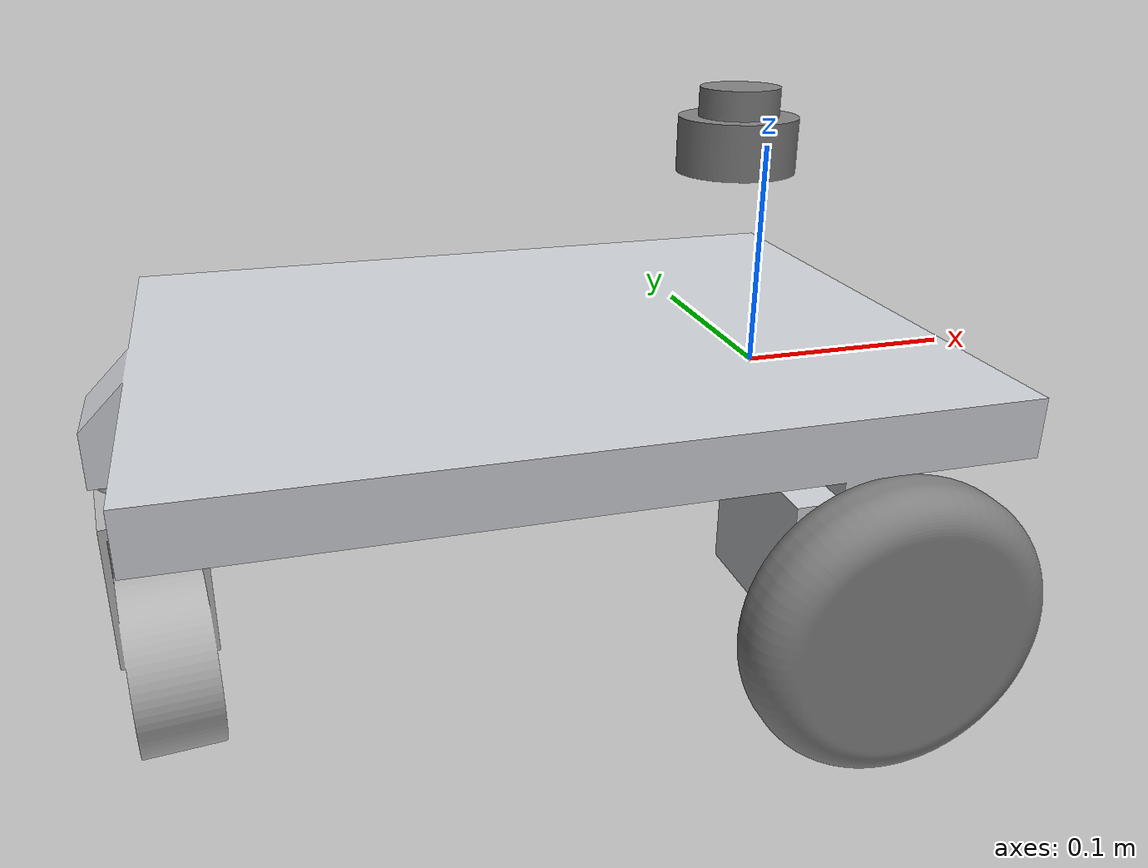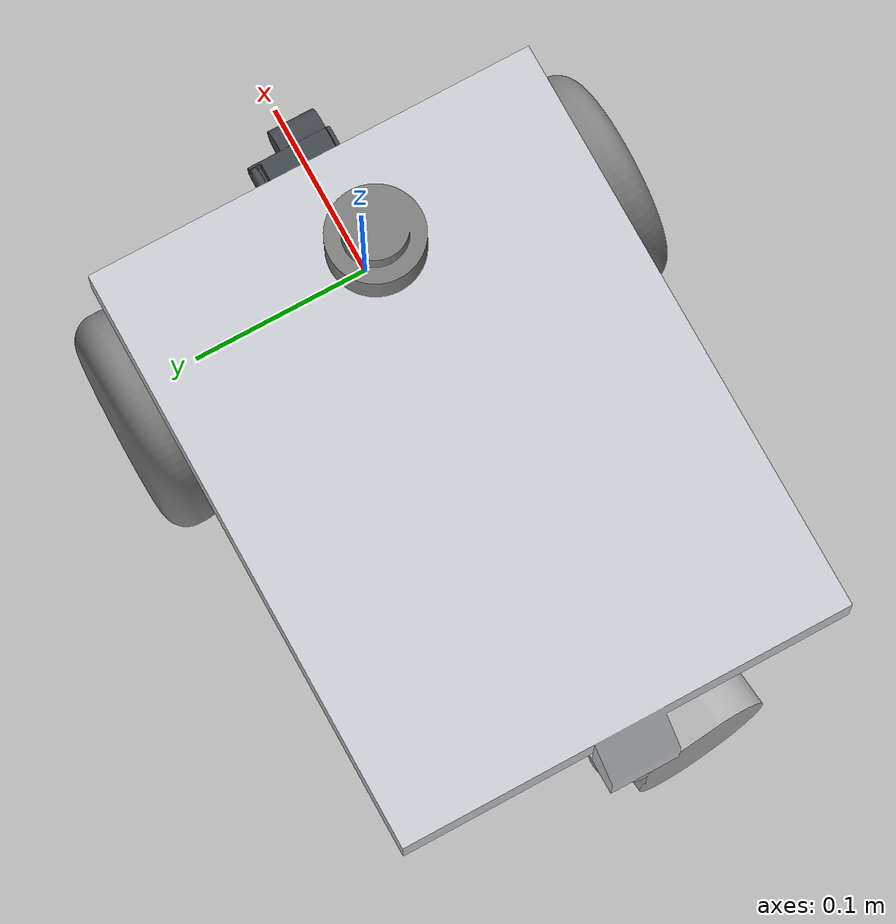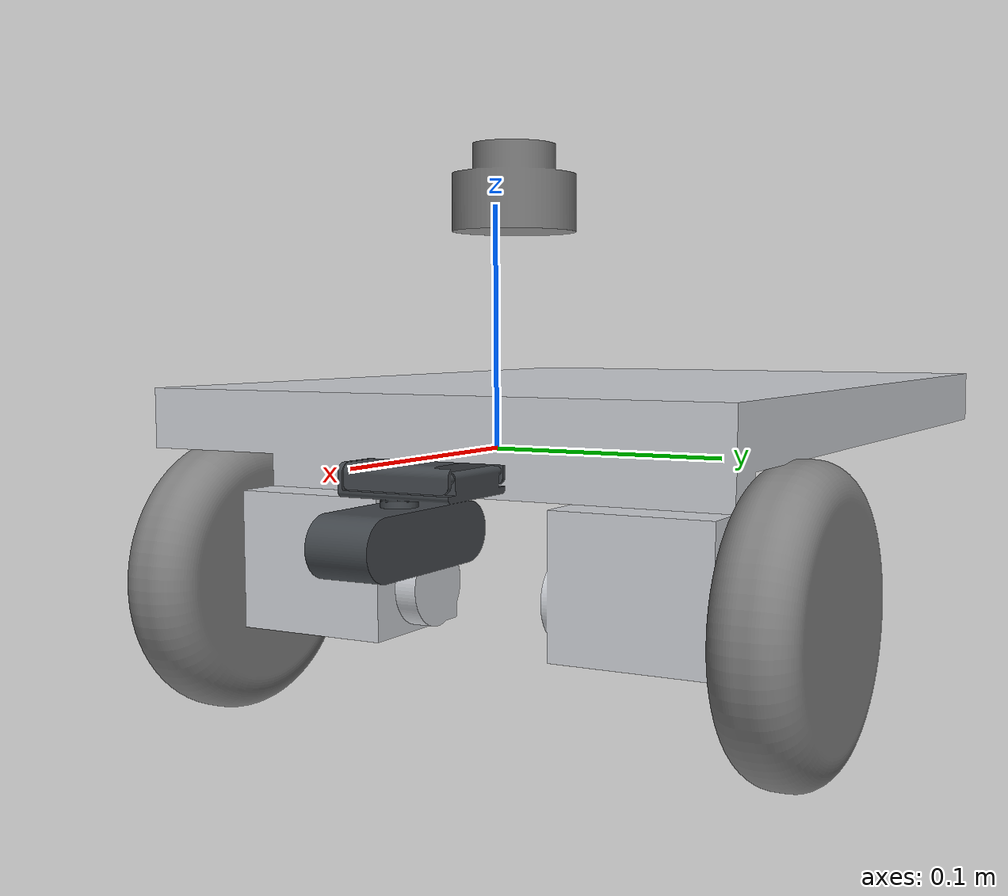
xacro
<?xml version="1.0"?>
<robot xmlns:xacro="http://www.ros.org/wiki/xacro" name="diffdrive_robot">

  <xacro:arg name="prefix" default="" />

  <xacro:include filename="$(find cps_loki_description)/urdf/diffbot_description.urdf.xacro" />

  <xacro:include filename="$(find cps_loki_description)/urdf/diffbot.materials.xacro" />

  <xacro:include filename="$(find cps_loki_description)/urdf/odrive.ros2_control.xacro" />

  <xacro:diffbot prefix="$(arg prefix)" />

  <xacro:odrive_ros2_control
    name="ODriveDiffBot"
    joint0_name="$(arg prefix)left_wheel_joint"
    joint1_name="$(arg prefix)right_wheel_joint" />

</robot>

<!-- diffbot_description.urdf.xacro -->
<robot xmlns:xacro="http://www.ros.org/wiki/xacro">

  <xacro:macro name="diffbot" params="prefix">

    <!-- Constants for robot dimensions -->
    <xacro:property name="PI" value="3.1415926535897931"/>
    <xacro:property name="base_mass" value="0.3" />
    <!-- arbitrary value for base mass -->
    <xacro:property name="base_width" value="0.26" />
    <!-- Updated wheel spacing to 25cm -->
    <xacro:property name="base_length" value="0.34" />
    <xacro:property name="base_height" value="0.123" />
    <xacro:property name="wheel_mass" value="0.3" />
    <!-- arbitrary value for wheel mass -->
    <xacro:property name="wheel_len" value="0.020" />
    <xacro:property name="wheel_radius" value="0.0625" />
    <xacro:property name="caster_wheel_mass" value="0.1" />
    <!-- arbitrary value for caster wheel mass -->
    <xacro:property name="caster_wheel_radius" value="0.04" />
    <xacro:property name="z_offset" value="-${base_height/2}" />
    <!-- Offset of main Axis to center of base body (Axis of rotation for steering) -->
    <xacro:property name="base_offset" value="0.11" />

    <!-- needed for replacement to find mesh dir: package://cps_loki_description/mesh/ -->

    <!-- Base Link -->
    <link name="${prefix}base_link">
      <visual>
        <origin xyz="0 0 0" rpy="0 0 0" />
        <geometry>
          <mesh filename="package://cps_loki_description/mesh/base_link_visual.stl"/>
        </geometry>
        <material name="base_link_material">
          <color rgba="0.80032179626883115375 0.81301836741632160788 0.83346199892499306383 1.0"/>
        </material>
      </visual>
      <collision>
        <origin xyz="0 0 0" rpy="0 -0 0" />
        <geometry>
          <mesh filename="package://cps_loki_description/mesh/base_link_collision.stl"/>
        </geometry>
      </collision>
      <inertial>
        <origin xyz="0 0 0" rpy="0 0 0"/>
        <mass value="8.4123950268139715547" />
        <inertia ixx="0.090166990291185383777" ixy="4.7429179749238352248e-18" ixz="1.4209310488728267579e-18" iyy="0.055481261106946747064" iyz="-0.01112159061226025876" izz="0.13051099377067149065" />
      </inertial>
    </link>

    <!-- Adding base_footprint for mapping (Needed by slam toolbox) -->
    <link name="${prefix}base_footprint">
    </link>

    <joint name="${prefix}base_footprint_joint" type="fixed">
      <parent link="${prefix}base_link" />
      <child link="${prefix}base_footprint" />
      <origin xyz="0 0 ${z_offset}" rpy="0 0 0" />
    </joint>

    <!-- right wheel joint -->
    <!-- fixed wheel joint for testing, type was continuous -->
    <joint name="${prefix}right_wheel_joint" type="continuous">
      <origin xyz="0 ${-0.125 - wheel_len /2} ${z_offset}" rpy="${PI / 2} 0 0" />
      <parent link="${prefix}base_link" />
      <child link="${prefix}right_wheel" />
      <axis xyz="0 0 -1"/>
      <limit effort="1" velocity="20" />
      <joint_properties friction="0.0"/>
    </joint>

    <!-- right wheel Link -->
    <link name="${prefix}right_wheel">
      <visual>
        <origin xyz="0 0 ${wheel_len}" rpy="0 -0 0" />
        <geometry>
          <mesh filename="package://cps_loki_description/mesh/wheel_link_visual.stl"/>
        </geometry>
        <material name="wheel_link_material">
          <color rgba="0.50196078431372548323 0.50196078431372548323 0.50196078431372548323 1.0"/>
        </material>
      </visual>
      <collision>
        <origin xyz="0 0 ${wheel_len}" rpy="0 -0 0" />
        <geometry>
          <mesh filename="package://cps_loki_description/mesh/wheel_link_collision.stl"/>
        </geometry>
      </collision>
      <inertial>
        <origin xyz="-1.3877787807814456755e-17 -6.9388939039072283776e-18 -0.017500000000000029421" rpy="0 0 0"/>
        <mass value="0.43298678305638949038" />
        <inertia ixx="0.00043196650576949035269" ixy="0" ixz="1.8666117243005040269e-36" iyy="0.00043196650576949029848" iyz="0" izz="0.00078373880522818965139" />
      </inertial>
    </link>

    <!-- fixed wheel joint for testing, type was continuous -->
    <!-- left wheel joint -->
    <joint name="${prefix}left_wheel_joint" type="continuous">
      <origin xyz="0 ${0.125 + wheel_len /2} ${z_offset}" rpy="${PI / 2} 0 0" />
      <parent link="${prefix}base_link" />
      <child link="${prefix}left_wheel" />
      <axis xyz="0 0 1" />
      <limit effort="1" velocity="20" />
      <joint_properties friction="0.0" />
    </joint>

    <!-- left wheel Link -->
    <link name="${prefix}left_wheel">
      <visual>
        <origin xyz="0 0 ${wheel_len}" rpy="0 -0 0" />
        <geometry>
          <mesh filename="package://cps_loki_description/mesh/wheel_link_2_visual.stl"/>
        </geometry>
        <material name="wheel_link_2_material">
          <color rgba="0.50196078431372548323 0.50196078431372548323 0.50196078431372548323 1.0"/>
        </material>
      </visual>
      <collision>
        <origin xyz="0 0 ${wheel_len}" rpy="0 -0 0" />
        <geometry>
          <mesh filename="package://cps_loki_description/mesh/wheel_link_2_collision.stl"/>
        </geometry>
      </collision>
      <inertial>
        <origin xyz="-2.7755575615628913511e-17 0 -0.017500000000000015543" rpy="0 0 0"/>
        <mass value="0.43298678305638949038" />
        <inertia ixx="0.00043196650576949035269" ixy="1.4778173856800390343e-52" ixz="-4.8081924471597460774e-36" iyy="0.00043196650576949029848" iyz="0" izz="0.00078373880522818965139" />
      </inertial>
    </link>

    <!-- caster wheel joint -->
    <joint name="${prefix}caster_wheel_joint" type="fixed">
      <origin xyz="-${base_length / 2 + base_offset} 0 -0.02" rpy="0 0 ${PI}" />
      <parent link="${prefix}base_link" />
      <child link="${prefix}caster_wheel" />
      <axis xyz="0 0 1"/>
      <limit effort="1" velocity="20" />
      <joint_properties friction="0.0"/>
    </joint>

    <!-- caster wheel Link -->
    <link name="${prefix}caster_wheel">
      <visual>
        <origin xyz="0 0 0" rpy="0 -0 0" />
        <geometry>
          <mesh filename="package://cps_loki_description/mesh/caster_link_visual.stl"/>
        </geometry>
        <material name="caster_link_material">
          <color rgba="0.69513764518117548974 0.69513764518117548974 0.69513764518117548974 1.0"/>
        </material>
      </visual>
      <collision>
        <origin xyz="0 0 0" rpy="0 -0 0" />
        <geometry>
          <mesh filename="package://cps_loki_description/mesh/caster_link_collision.stl"/>
        </geometry>
      </collision>
      <inertial>
        <origin xyz="-0.0043392325658342043027 -0.026018163063004008662 -0.040087257391101506487" rpy="0 0 0"/>
        <mass value="0.4365196214157913146" />
        <inertia ixx="0.00065232223366267665706" ixy="-2.2812456870885095374e-05" ixz="-2.819328031928647945e-05" iyy="0.00051934268155350092177" iyz="-0.00016904771834628737077" izz="0.00028021186492738437085" />
      </inertial>
    </link>

    <!-- laser_link -->
    <link name="${prefix}laser_link">
      <visual>
        <origin xyz="0 0 0" rpy="${PI} -0 0" />
        <geometry>
          <mesh filename="package://cps_loki_description/mesh/laser_link_visual.stl"/>
        </geometry>
        <material name="laser_link_material">
          <color rgba="0.49803921568627451677 0.49803921568627451677 0.49803921568627451677 1.0"/>
        </material>
      </visual>
      <collision>
        <origin xyz="0 0 0" rpy="${PI} -0 0" />
        <geometry>
          <mesh filename="package://cps_loki_description/mesh/laser_link_collision.stl"/>
        </geometry>
      </collision>
      <inertial>
        <origin xyz="8.0502568807622093404e-21 2.7755575615628913511e-17 -0.01526549883836261258" rpy="${PI} 0 0"/>
        <mass value="0.065307030550339775776" />
        <inertia ixx="1.578111853789072904e-05" ixy="-4.8590457654361857326e-53" ixz="1.0816309858643350309e-52" iyy="1.5781118537890654501e-05" iyz="9.8088682514084147142e-38" izz="1.9760068210357054465e-05" />
      </inertial>
    </link>

    <!-- laser_joint -->
    <joint name="${prefix}laser_joint" type="fixed">
      <origin xyz="-0.015 0 0.09" rpy="0 0 0"/>
      <parent link="${prefix}base_link" />
      <child link="${prefix}laser_link" />
      <axis xyz="0 0 1"/>
      <limit effort="1" velocity="20" />
      <joint_properties friction="0.0"/>
    </joint>

    <!-- camera_link -->
    <link name="${prefix}camera_link">
      <visual>
        <origin xyz="0 0 0" rpy="0 -0 0" />
        <geometry>
          <mesh filename="package://cps_loki_description/mesh/camera_link_visual.stl"/>
        </geometry>
        <material name="camera_link_material">
          <color rgba="0.26274509803921569651 0.28235294117647058432 0.30196078431372547213 1.0"/>
        </material>
      </visual>
      <collision>
        <origin xyz="0 0 0" rpy="0 -0 0" />
        <geometry>
          <mesh filename="package://cps_loki_description/mesh/camera_link_collision.stl"/>
        </geometry>
      </collision>
      <inertial>
        <origin xyz="5.3378961738576549005e-07 0.0016484827975361887251 -0.020840554768345870285" rpy="0 0 0"/>
        <mass value="0.064008494238512375629" />
        <inertia ixx="1.7394518695567356026e-05" ixy="-4.87317899857206066e-10" ixz="-1.7982620680900958214e-11" iyy="3.2074360900148983727e-05" iyz="2.0892555595878115295e-06" izz="2.8321439372619354409e-05" />
      </inertial>
    </link>

    <!-- Camera Joint -->
    <joint name="${prefix}camera_joint" type="fixed">
      <origin xyz="${base_length / 2 - base_offset} 0 0" rpy="0 0 ${PI}" />
      <parent link="${prefix}base_link" />
      <child link="${prefix}camera_link" />
      <axis xyz="0 0 1"/>
      <limit effort="1" velocity="20" />
      <joint_properties friction="0.0"/>
    </joint>

  </xacro:macro>
</robot>

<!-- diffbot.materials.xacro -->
<!--
Copied from ROS1 example:
https://github.com/ros-simulation/gazebo_ros_demos/blob/kinetic-devel/rrbot_description/urdf/materials.xacro
-->
<robot>

  <material name="black">
    <color rgba="0.0 0.0 0.0 1.0" />
  </material>

  <material name="blue">
    <color rgba="0.0 0.0 0.8 1.0" />
  </material>

  <material name="green">
    <color rgba="0.0 0.8 0.0 1.0" />
  </material>

  <material name="grey">
    <color rgba="0.2 0.2 0.2 1.0" />
  </material>

  <material name="orange">
    <color rgba="${255/255} ${108/255} ${10/255} 1.0" />
  </material>

  <material name="brown">
    <color rgba="${222/255} ${207/255} ${195/255} 1.0" />
  </material>

  <material name="red">
    <color rgba="0.8 0.0 0.0 1.0" />
  </material>

  <material name="white">
    <color rgba="1.0 1.0 1.0 1.0" />
  </material>

  <material name="grey2">
        <color rgba="0.9 0.9 0.9 1.0"/>
  </material>

  <material name="lightGrey">
      <color rgba="0.6 0.6 0.6 1.0"/>
  </material>

</robot>
